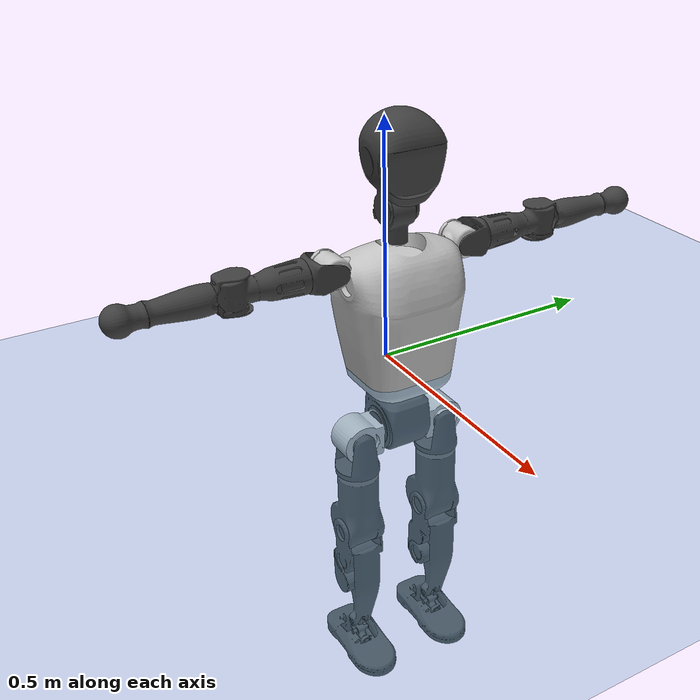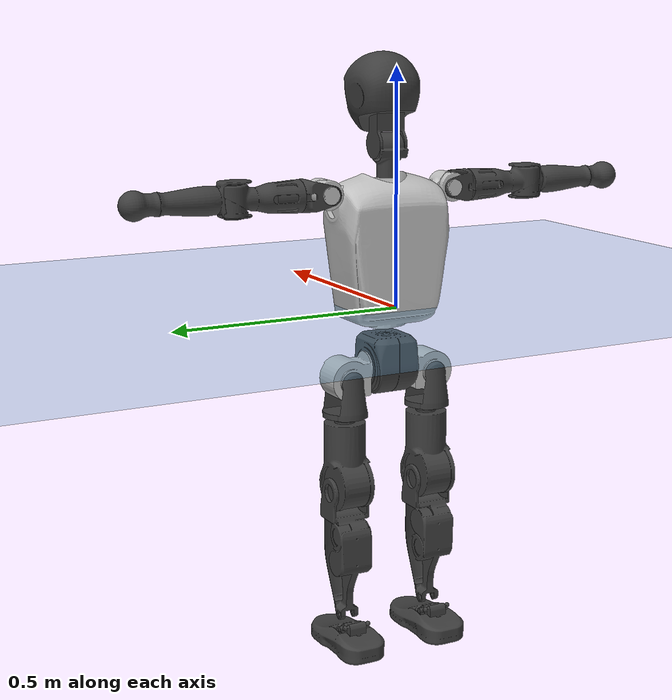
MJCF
<mujoco model="T1">
  <compiler angle="radian" assetdir="assets" balanceinertia="true" inertiafromgeom="false"/>

  <option timestep="0.005" density="1.2" viscosity="2e-05"/>

  <size nkey="1"/>

  <visual>
    <quality shadowsize="8192"/>
    <map shadowclip="0.5"/>
  </visual>

  <default>
    <default class="/">
      <joint armature="0.01" damping="0.01" frictionloss="0.1"/>
      <geom contype="0" conaffinity="0" group="1" solref="-1000 -80"/>
      <site size="0.01 0.005 0.005" group="5"/>
      <general forcelimited="true" biastype="affine" gainprm="25" biasprm="0 -25 -0.6"/>
      <default class="t1">
        <geom rgba="0.25 0.25 0.25 1"/>
        <default class="visual">
          <geom type="mesh" group="2"/>
        </default>
        <default class="collision">
          <geom group="3"/>
        </default>
        <default class="foot">
          <geom size="0.1115 0.05 0.015" type="box" condim="6" group="4" priority="1" solimp="0.015 1 0.015"/>
        </default>
        <default class="reward_collision_sphere">
          <geom group="5" rgba="1 0 0 1"/>
        </default>
      </default>
    </default>
  </default>

  <asset>
    <texture type="skybox" colorspace="auto" name="//unnamed_texture_0" builtin="gradient" rgb1="0.95 0.95 0.95" rgb2="0.95 0.95 0.95" width="100" height="600"/>
    <texture type="2d" colorspace="auto" name="texplane" builtin="checker" rgb1="0.345 0.575 0.748" rgb2="0.345 0.575 0.748" markrgb="1 1 1" width="512" height="512"/>
    <material name="MatPlane" class="/" texture="texplane" texuniform="true" texrepeat="2 2" specular="0.9"/>
    <mesh name="Trunk" class="/" file="Trunk.stl"/>
    <mesh name="H1" class="/" file="H1.stl"/>
    <mesh name="H2" class="/" file="H2.stl"/>
    <mesh name="AL1" class="/" file="AL1.stl"/>
    <mesh name="AL2" class="/" file="AL2.stl"/>
    <mesh name="AL3" class="/" file="AL3.stl"/>
    <mesh name="left_hand_link" class="/" file="left_hand_link.stl"/>
    <mesh name="AR1" class="/" file="AR1.stl"/>
    <mesh name="AR2" class="/" file="AR2.stl"/>
    <mesh name="AR3" class="/" file="AR3.stl"/>
    <mesh name="right_hand_link" class="/" file="right_hand_link.stl"/>
    <mesh name="Waist" class="/" file="Waist.stl"/>
    <mesh name="Hip_Pitch_Left" class="/" file="Hip_Pitch_Left.stl"/>
    <mesh name="Hip_Roll_Left" class="/" file="Hip_Roll_Left.stl"/>
    <mesh name="Hip_Yaw_Left" class="/" file="Hip_Yaw_Left.stl"/>
    <mesh name="Shank_Left" class="/" file="Shank_Left.stl"/>
    <mesh name="Ankle_Cross_Left" class="/" file="Ankle_Cross_Left.stl"/>
    <mesh name="left_foot_link" class="/" file="left_foot_link.stl"/>
    <mesh name="Hip_Pitch_Right" class="/" file="Hip_Pitch_Right.stl"/>
    <mesh name="Hip_Roll_Right" class="/" file="Hip_Roll_Right.stl"/>
    <mesh name="Hip_Yaw_Right" class="/" file="Hip_Yaw_Right.stl"/>
    <mesh name="Shank_Right" class="/" file="Shank_Right.stl"/>
    <mesh name="Ankle_Cross_Right" class="/" file="Ankle_Cross_Right.stl"/>
    <mesh name="right_foot_link" class="/" file="right_foot_link.stl"/>
  </asset>

  <worldbody>
    <geom name="floor" class="/" size="100 100 0.125" type="plane" group="0" material="MatPlane"/>
    <light name="toplight_shadow" class="/" pos="0 0 5" dir="0.0990148 0.0990148 -0.990148" type="directional" ambient="0.04 0.04 0.04" diffuse="0.55 0.55 0.55" specular="0.12 0.12 0.12"/>
    <light name="toplight_fill" class="/" pos="0 0 5" dir="0.0990148 0.0990148 -0.990148" type="directional" castshadow="false" ambient="0.04 0.04 0.04" diffuse="0.3 0.3 0.3" specular="0.08 0.08 0.08"/>
    <body name="trunk" childclass="t1" pos="-0.000213895 -0.000612978 -0.00115484" quat="1 -5.51397e-05 -0.000595138 0.000449182">
      <inertial pos="0.0404258 -0.000607176 0.117775" quat="0.999956 0.000545799 -0.00936597 0.000338935" mass="9.22254" diaginertia="0.0201394 0.0518926 0.0969221"/>
      <joint name="//unnamed_joint_0" type="free" armature="0" damping="0" frictionloss="0"/>
      <geom name="//unnamed_geom_1" class="visual" rgba="0.76 0.76 0.76 1" mesh="Trunk"/>
      <geom name="//unnamed_geom_2" class="collision" size="0.0696503 0.0928671 0.139301" pos="0.0443354 0 0.134145" type="box"/>
      <geom name="//unnamed_geom_3" class="reward_collision_sphere" size="0.106797" pos="0.0443354 0 0.111788"/>
      <geom name="//unnamed_geom_4" class="reward_collision_sphere" size="0.0139301" pos="0.0443354 0.0789832 0"/>
      <geom name="//unnamed_geom_5" class="reward_collision_sphere" size="0.0139301" pos="0.0443354 -0.0789832 0"/>
      <geom name="//unnamed_geom_6" class="reward_collision_sphere" size="0.0139301" pos="0.0443354 0.099426 0.201218"/>
      <geom name="//unnamed_geom_7" class="reward_collision_sphere" size="0.0139301" pos="0.0443354 -0.099426 0.201218"/>
      <site name="imu" pos="-0.00539159 -0.00195169 -9.6059e-05" size="0.00928671"/>
      <camera name="track" pos="0 -1.85843 0" quat="0.707107 0.707107 0 0" mode="trackcom"/>
      <camera name="ego_camera" pos="0.0901486 0 0.469508" quat="-0.5 -0.5 0.5 0.5"/>
      <body name="H1" pos="0.0450628 -0.0001921 0.271222" quat="1 -0.000160537 0.000385948 0.000276878">
        <inertial pos="-0.00107314 -0.0024871 0.0640361" quat="0.76386 -0.013185 0.00182928 0.645244" mass="0.354323" diaginertia="5.28465e-05 0.000156745 0.000264363"/>
        <joint name="AAHead_yaw" pos="0 0 0" axis="-0.000391373 0.00067855 1" stiffness="0.000146181" range="-1.6042 1.57673" armature="0.00940068" damping="0.0147138" frictionloss="0.088942"/>
        <geom name="//unnamed_geom_8" class="visual" mesh="H1"/>
        <body name="H2" pos="0.000385427 -0.000381994 0.0689229" quat="1 -0.000149714 0.000133991 -0.000678402">
          <inertial pos="0.00536129 0.00123564 0.110133" quat="0.988472 0.106223 -0.0743114 -0.0782143" mass="0.49763" diaginertia="0.000451334 0.00133802 0.00301266"/>
          <joint name="Head_pitch" pos="0 0 0" axis="-0.0054772 -0.999985 -0.000663459" range="-1.218 0.373626" armature="0.00954082" damping="0.0128529" frictionloss="0.0990879"/>
          <geom name="//unnamed_geom_9" class="visual" mesh="H2"/>
          <geom name="//unnamed_geom_10" class="collision" size="0.0742937" pos="0.00738923 0 0.122966"/>
          <geom name="//unnamed_geom_11" class="reward_collision_sphere" size="0.0835804" pos="0.0147785 0 0.111788"/>
        </body>
      </body>
      <body name="AL1" pos="0.0448064 0.0990221 0.244546" quat="1 -0.000338427 0.000466897 -0.000173839">
        <inertial pos="-0.00214228 0.0425034 0.000973305" quat="0.503907 0.495245 -0.50459 0.496185" mass="0.42885" diaginertia="0.000302881 0.000923788 0.000513712"/>
        <joint name="Left_Shoulder_Pitch" pos="0 0 0" axis="-0.001474 0.999999 8.58835e-05" range="-3.31403 1.21897" armature="0.00926435" damping="0.00321386" frictionloss="0.097006"/>
        <geom name="//unnamed_geom_12" class="visual" rgba="0.76 0.76 0.76 1" mesh="AL1"/>
        <body name="AL2" pos="0.00152964 0.0434566 -0.00091525" quat="1 2.89863e-05 0.000321581 0.000250769">
          <inertial pos="0.00342668 0.0355496 -0.000913633" quat="0.491364 0.512376 -0.484997 0.510696" mass="0.12799" diaginertia="8.84045e-05 0.000240922 0.000307234"/>
          <joint name="Left_Shoulder_Roll" pos="0 0 0" axis="-0.999978 0.00102693 -0.0065809" range="-1.57359 1.73968" armature="0.00955918" damping="0.00594469" frictionloss="0.0876217"/>
          <geom name="//unnamed_geom_13" class="visual" mesh="AL2"/>
          <body name="AL3" pos="-0.000497239 0.0571942 -6.57665e-05" quat="1 -2.84326e-05 0.000179585 -0.000372037">
            <inertial pos="-0.000574239 0.0792357 0.000383978" quat="0.706454 0.707759 -0.000247802 0.000147596" mass="0.819732" diaginertia="0.00280645 0.00885815 0.00109872"/>
            <joint name="Left_Elbow_Pitch" pos="0 0 0" axis="-0.0014956 -0.999993 0.00343327" range="-2.26604 2.27154" armature="0.00930033" damping="0.0105777" frictionloss="0.0886065"/>
            <geom name="//unnamed_geom_14" class="visual" mesh="AL3"/>
            <geom name="//unnamed_geom_15" class="collision" size="0.0278601 0.0696503" pos="0 0.0464607 0" quat="0.707105 0.707108 0 0" type="cylinder"/>
            <geom name="//unnamed_geom_16" class="reward_collision_sphere" size="0.0334321"/>
            <body name="left_hand_link" pos="0.00100875 0.135755 0.00241075" quat="1 0.000126777 0.000212492 -0.000342439">
              <inertial pos="-0.000179536 0.10099 0.000158017" quat="0.708749 0.705461 -0.000328616 -0.000941936" mass="0.269912" diaginertia="0.00179952 0.00569826 0.000381836"/>
              <joint name="Left_Elbow_Yaw" pos="0 0 0" axis="0.00499581 0.00536741 0.999973" range="-2.45356 -0.00521443" armature="0.00943152" damping="0.0112541" frictionloss="0.0897626"/>
              <geom name="//unnamed_geom_17" class="visual" mesh="left_hand_link"/>
              <geom name="//unnamed_geom_18" class="collision" size="0.0278601 0.0812587" pos="0 0.120798 0" quat="0.707105 0.707108 0 0" type="cylinder"/>
              <geom name="//unnamed_geom_19" class="reward_collision_sphere" size="0.0464335"/>
              <geom name="//unnamed_geom_20" class="reward_collision_sphere" size="0.0325035" pos="0 0.102214 0"/>
              <geom name="//unnamed_geom_21" class="reward_collision_sphere" size="0.0325035" pos="0 0.199781 0"/>
            </body>
          </body>
        </body>
      </body>
      <body name="AR1" pos="0.0420378 -0.0973541 0.245204" quat="1 0.000103639 0.000839108 0.000191114">
        <inertial pos="-0.000665056 -0.04103 -9.54386e-05" quat="0.506852 0.492944 -0.502239 0.497858" mass="0.429907" diaginertia="0.000303114 0.0009062 0.000516294"/>
        <joint name="Right_Shoulder_Pitch" pos="0 0 0" axis="-0.000965842 -0.999998 -0.00164886" range="-1.22566 3.29715" armature="0.00905918" damping="0.00592128" frictionloss="0.0949002"/>
        <geom name="//unnamed_geom_22" class="visual" rgba="0.76 0.76 0.76 1" mesh="AR1"/>
        <body name="AR2" pos="-0.000586327 -0.043894 -0.00134257" quat="1 -6.97233e-05 1.93314e-06 -0.000207953">
          <inertial pos="0.00373673 -0.0354037 3.49605e-05" quat="0.513051 0.487795 -0.511376 0.487165" mass="0.127009" diaginertia="8.98463e-05 0.000237397 0.000305469"/>
          <joint name="Right_Shoulder_Roll" pos="0 0 0" axis="-0.999992 -0.000914605 -0.00393894" range="-1.74521 1.57605" armature="0.00930873" damping="0.00105355" frictionloss="0.0956166"/>
          <geom name="//unnamed_geom_23" class="visual" mesh="AR2"/>
          <body name="AR3" pos="-0.000640046 -0.0560094 0.000421906" quat="1 4.91804e-05 -0.000100477 3.57202e-05">
            <inertial pos="-0.00178026 -0.079675 6.49814e-05" quat="0.708887 0.705322 -0.000706413 -0.000172966" mass="0.835385" diaginertia="0.00288104 0.00891786 0.00108418"/>
            <joint name="Right_Elbow_Pitch" pos="0 0 0" axis="-0.00498808 0.999987 -0.000504985" range="-2.26781 2.28872" armature="0.00927235" damping="0.0106607" frictionloss="0.0910033"/>
            <geom name="//unnamed_geom_24" class="visual" mesh="AR3"/>
            <geom name="//unnamed_geom_25" class="collision" size="0.0278601 0.0696503" pos="0 -0.0464607 0" quat="0.707105 0.707108 0 0" type="cylinder"/>
            <geom name="//unnamed_geom_26" class="reward_collision_sphere" size="0.0334321"/>
            <body name="right_hand_link" pos="-0.000562211 -0.136265 0.000817217" quat="1 -0.000104988 4.51868e-05 -1.62327e-05">
              <inertial pos="0.000261728 -0.101827 0.00126669" quat="0.705599 0.708609 0.00130721 -0.00139044" mass="0.265528" diaginertia="0.00180194 0.00576348 0.000375206"/>
              <joint name="Right_Elbow_Yaw" pos="0 0 0" axis="-0.000354383 0.00269687 0.999996" stiffness="0.00313911" range="-0.00646868 2.4389" armature="0.00944942" damping="0.01052" frictionloss="0.093157"/>
              <geom name="//unnamed_geom_27" class="visual" mesh="right_hand_link"/>
              <geom name="//unnamed_geom_28" class="collision" size="0.0278601 0.0812587" pos="0 -0.120798 0" quat="0.707105 0.707108 0 0" type="cylinder"/>
              <geom name="//unnamed_geom_29" class="reward_collision_sphere" size="0.0464335"/>
              <geom name="//unnamed_geom_30" class="reward_collision_sphere" size="0.0325035" pos="0 -0.102214 0"/>
              <geom name="//unnamed_geom_31" class="reward_collision_sphere" size="0.0325035" pos="0 -0.199781 0"/>
            </body>
          </body>
        </body>
      </body>
      <body name="Waist" pos="0.0460243 -0.000506105 -0.129697" quat="1 -0.00010157 -0.000150007 -6.88691e-05">
        <inertial pos="0.000681705 -0.000979847 0.00728226" quat="0.98357 0.00137491 -0.180514 0.00164174" mass="2.0757" diaginertia="0.00119686 0.00372476 0.00838645"/>
        <joint name="Waist" pos="0 0 0" axis="-0.0005926 -0.0012603 0.999999" stiffness="0.000353617" range="-1.56513 1.55192" armature="0.00921384" damping="0" frictionloss="0.0924916"/>
        <geom name="//unnamed_geom_32" class="visual" mesh="Waist"/>
        <body name="Hip_Pitch_Left" pos="0.000627774 0.0997468 0.000303788" quat="1 -0.000137135 -8.04219e-05 0.000138583">
          <inertial pos="0.00134287 -0.00713651 -0.021902" quat="0.975146 0.22109 0.0143713 0.00182988" mass="0.826337" diaginertia="0.000393901 0.00100865 0.00219718"/>
          <joint name="Left_Hip_Pitch" pos="0 0 0" axis="-0.00595289 0.999982 0.000717708" range="-1.79577 1.56738" armature="0.00927219" damping="0.00884819" frictionloss="0.0910587"/>
          <geom name="//unnamed_geom_33" class="visual" rgba="0.76 0.76 0.76 1" mesh="Hip_Pitch_Left"/>
          <body name="Hip_Roll_Left" pos="-0.000957682 0.00054199 -0.0235055" quat="1 -7.86022e-05 -5.95276e-05 -2.99368e-05">
            <inertial pos="0.00154503 -0.000376844 -0.0602846" quat="0.706732 -0.00173846 -0.00806864 0.707433" mass="0.306327" diaginertia="0.000381133 0.00103681 0.000891976"/>
            <joint name="Left_Hip_Roll" pos="0 0 0" axis="-0.999991 -0.00403062 -0.00108958" range="-1.57507 0.203756" armature="0.00921248" damping="0.00754234" frictionloss="0.0944076"/>
            <geom name="//unnamed_geom_34" class="visual" mesh="Hip_Roll_Left"/>
            <geom name="//unnamed_geom_35" class="reward_collision_sphere" size="0.0510769"/>
            <body name="Hip_Yaw_Left" pos="0.000676803 0.000258321 -0.090816" quat="1 1.22077e-05 -5.4377e-08 2.4762e-05">
              <inertial pos="-0.0049632 -0.000867799 -0.100847" quat="0.69499 -0.0327653 -0.0334888 0.717492" mass="1.74052" diaginertia="0.00577532 0.0173753 0.00452203"/>
              <joint name="Left_Hip_Yaw" pos="0 0 0" axis="-0.000913281 -0.00235322 -0.999997" range="-1.00266 1.0035" armature="0.00937293" damping="0.0124027" frictionloss="0.0897334"/>
              <geom name="//unnamed_geom_36" class="visual" mesh="Hip_Yaw_Left"/>
              <geom name="//unnamed_geom_37" class="collision" size="0.0464335 0.0742937" type="cylinder"/>
              <body name="Shank_Left" pos="-0.00932915 0.000935489 -0.150161" quat="1 0.000303063 -0.000609496 -0.000142555">
                <inertial pos="-0.00544074 -0.00116639 -0.138195" quat="0.99768 0.000557611 -0.0262911 0.0627975" mass="1.37209" diaginertia="0.00757009 0.023609 0.00319766"/>
                <joint name="Left_Knee_Pitch" pos="0 0 0" axis="-0.00129669 0.999999 -0.00034385" range="0.00155959 2.34128" armature="0.00914052" damping="0.0100281" frictionloss="0.0888195"/>
                <geom name="//unnamed_geom_38" class="visual" mesh="Shank_Left"/>
                <geom name="//unnamed_geom_39" class="collision" size="0.0464335 0.0696503" pos="0 0 -0.134145" type="cylinder"/>
                <geom name="//unnamed_geom_40" class="reward_collision_sphere" size="0.0603636"/>
                <body name="Ankle_Cross_Left" pos="-0.00158662 0.000578116 -0.313794" quat="1 3.56134e-05 -3.01866e-05 2.58151e-05">
                  <inertial pos="-0.00220167 -5.11647e-05 -0.00906025" quat="0.44417 0.554986 0.545899 0.443506" mass="0.0576979" diaginertia="6.37082e-06 1.75624e-05 1.97208e-05"/>
                  <joint name="Left_Ankle_Pitch" pos="0 0 0" axis="-0.0026694 0.999992 0.00293802" range="-0.865068 0.336849" armature="0.00943039" damping="0.00537008" frictionloss="0.0934798"/>
                  <geom name="//unnamed_geom_41" class="visual" mesh="Ankle_Cross_Left"/>
                  <body name="left_foot_link" pos="-0.000737577 -0.000222215 -0.0140079" quat="1 -0.000234619 0.000270805 0.000127099">
                    <inertial pos="-0.000166003 5.66952e-05 -0.00854531" quat="0.000260367 0.62079 -0.000406232 0.783977" mass="0.557788" diaginertia="0.000601324 0.00166523 0.00389486"/>
                    <joint name="Left_Ankle_Roll" pos="0 0 0" axis="-0.999998 0.00180215 0.000455423" range="-0.433998 0.420722" armature="0.00923392" damping="0.0159642" frictionloss="0.0928158"/>
                    <geom name="//unnamed_geom_42" class="visual" mesh="left_foot_link"/>
                    <geom name="left_foot" class="foot" size="0.106343 0.0504828 0.0137777" pos="0.00738923 0 -0.0167681"/>
                    <geom name="//unnamed_geom_44" class="reward_collision_sphere" size="0.0482909" pos="0.00738923 0 -0.0167681"/>
                    <geom name="//unnamed_geom_45" class="reward_collision_sphere" size="0.0278601" pos="0.0701977 -0.0213719 -0.0167681"/>
                    <geom name="//unnamed_geom_46" class="reward_collision_sphere" size="0.0278601" pos="-0.0517246 -0.0213719 -0.0167681"/>
                    <site name="left_foot" class="foot" pos="0.00738923 0 -0.0167681" size="0.00928671"/>
                  </body>
                </body>
              </body>
            </body>
          </body>
        </body>
        <body name="Hip_Pitch_Right" pos="-0.000821749 -0.0974313 0.00049004" quat="1 -0.000179125 8.86889e-05 -3.38223e-05">
          <inertial pos="-1.39709e-06 0.0056016 -0.0200963" quat="0.974292 -0.224652 0.0167024 -0.00268526" mass="0.815319" diaginertia="0.000399266 0.00101136 0.00215043"/>
          <joint name="Right_Hip_Pitch" pos="0 0 0" axis="8.74961e-05 -1 -0.000123001" range="-1.58503 1.78686" armature="0.00929074" damping="0.00342764" frictionloss="0.0989504"/>
          <geom name="//unnamed_geom_47" class="visual" rgba="0.76 0.76 0.76 1" mesh="Hip_Pitch_Right"/>
          <body name="Hip_Roll_Right" pos="-0.00133292 -0.000454839 -0.0222333" quat="1 -5.36689e-06 -6.66604e-06 1.02797e-05">
            <inertial pos="0.00140924 -0.000254031 -0.0609773" quat="0.707206 -0.00608782 -0.00638513 0.706952" mass="0.308116" diaginertia="0.000375588 0.00104082 0.000891745"/>
            <joint name="Right_Hip_Roll" pos="0 0 0" axis="-1 -0.000666565 0.000350395" range="-0.213048 1.58654" armature="0.00943254" damping="0.013059" frictionloss="0.0940215"/>
            <geom name="//unnamed_geom_48" class="visual" mesh="Hip_Roll_Right"/>
            <geom name="//unnamed_geom_49" class="reward_collision_sphere" size="0.0510769"/>
            <body name="Hip_Yaw_Right" pos="0.000494164 0.000329611 -0.0914399" quat="1 -7.66973e-05 -8.49296e-05 3.07964e-05">
              <inertial pos="-0.00527261 0.00118546 -0.0995113" quat="0.71533 -0.0323749 -0.0337665 0.69722" mass="1.71988" diaginertia="0.0056175 0.0170844 0.00448688"/>
              <joint name="Right_Hip_Yaw" pos="0 0 0" axis="0.00134745 0.00119993 -0.999998" stiffness="0.0015976" range="-0.997755 1.00489" armature="0.00925802" damping="0.00937375" frictionloss="0.09275"/>
              <geom name="//unnamed_geom_50" class="visual" mesh="Hip_Yaw_Right"/>
              <geom name="//unnamed_geom_51" class="collision" size="0.0464335 0.0742937" type="cylinder"/>
              <body name="Shank_Right" pos="-0.00972152 -0.000781353 -0.148766" quat="1 7.09353e-06 -1.77708e-06 1.82901e-05">
                <inertial pos="-0.00645163 -0.00095302 -0.136656" quat="0.999051 -0.00171162 -0.0226847 -0.0371422" mass="1.40182" diaginertia="0.00760056 0.0237671 0.00337104"/>
                <joint name="Right_Knee_Pitch" pos="0 0 0" axis="-0.0062088 -0.999972 0.00410218" range="-2.33753 -0.0195711" armature="0.00930006" damping="0.00609649" frictionloss="0.094818"/>
                <geom name="//unnamed_geom_52" class="visual" mesh="Shank_Right"/>
                <geom name="//unnamed_geom_53" class="collision" size="0.0464335 0.0696503" pos="0 0 -0.134145" type="cylinder"/>
                <geom name="//unnamed_geom_54" class="reward_collision_sphere" size="0.0603636"/>
                <body name="Ankle_Cross_Right" pos="0.00140151 0.000509966 -0.313706" quat="1 4.0004e-05 5.05145e-05 -0.000411778">
                  <inertial pos="-0.00250321 0.0011869 -0.00914976" quat="0.446935 0.550847 0.549083 0.441956" mass="0.0592885" diaginertia="6.42294e-06 1.7722e-05 1.98634e-05"/>
                  <joint name="Right_Ankle_Pitch" pos="0 0 0" axis="0.000765025 -0.999999 -0.000732954" range="-0.315397 0.85493" armature="0.00906856" damping="0.00498674" frictionloss="0.0937358"/>
                  <geom name="//unnamed_geom_55" class="visual" mesh="Ankle_Cross_Right"/>
                  <body name="right_foot_link" pos="0.000893361 -0.000787328 -0.0138643" quat="1 -2.71785e-05 -2.84468e-05 -0.000171952">
                    <inertial pos="2.82885e-05 0.000810555 -0.00872387" quat="-0.000395079 0.618842 0.000409102 0.785516" mass="0.545235" diaginertia="0.000593975 0.00166395 0.00382982"/>
                    <joint name="Right_Ankle_Roll" pos="0 0 0" axis="-0.999999 -5.35291e-05 -0.00143023" range="-0.434685 0.432961" armature="0.00957624" damping="0.0133865" frictionloss="0.100926"/>
                    <geom name="//unnamed_geom_56" class="visual" mesh="right_foot_link"/>
                    <geom name="right_foot" class="foot" size="0.101485 0.0424642 0.014983" pos="0.00738923 0 -0.0167681"/>
                    <geom name="//unnamed_geom_58" class="reward_collision_sphere" size="0.0371468"/>
                    <geom name="//unnamed_geom_59" class="reward_collision_sphere" size="0.0278601" pos="0.00738923 0 -0.0167681"/>
                    <geom name="//unnamed_geom_60" class="reward_collision_sphere" size="0.0278601" pos="0.0701977 0.0213719 -0.0167681"/>
                    <geom name="//unnamed_geom_61" class="reward_collision_sphere" size="0.0278601" pos="-0.0517246 0.0213719 -0.0167681"/>
                    <site name="right_foot" class="foot" pos="0.00738923 0 -0.0167681" size="0.00928671"/>
                  </body>
                </body>
              </body>
            </body>
          </body>
        </body>
      </body>
    </body>
  </worldbody>

  <contact>
    <pair class="/" geom1="floor" geom2="left_foot" name="//unnamed_contact_0"/>
    <pair class="/" geom1="floor" geom2="right_foot" name="//unnamed_contact_1"/>
  </contact>

  <actuator>
    <general name="AAHead_yaw" class="/" joint="AAHead_yaw" forcerange="-6.51613 6.51613" gainprm="23.1103" biasprm="0 -23.1103 -0.54717"/>
    <general name="Head_pitch" class="/" joint="Head_pitch" forcerange="-6.26656 6.26656" gainprm="23.1103" biasprm="0 -23.1103 -0.54717"/>
    <general name="Left_Shoulder_Pitch" class="/" joint="Left_Shoulder_Pitch" forcerange="-17.2172 17.2172" gainprm="23.1103" biasprm="0 -23.1103 -0.54717"/>
    <general name="Left_Shoulder_Roll" class="/" joint="Left_Shoulder_Roll" forcerange="-16.5594 16.5594" gainprm="23.1103" biasprm="0 -23.1103 -0.54717"/>
    <general name="Left_Elbow_Pitch" class="/" joint="Left_Elbow_Pitch" forcerange="-16.4768 16.4768" gainprm="23.1103" biasprm="0 -23.1103 -0.54717"/>
    <general name="Left_Elbow_Yaw" class="/" joint="Left_Elbow_Yaw" forcerange="-16.8698 16.8698" gainprm="23.1103" biasprm="0 -23.1103 -0.54717"/>
    <general name="Right_Shoulder_Pitch" class="/" joint="Right_Shoulder_Pitch" forcerange="-16.9326 16.9326" gainprm="23.1103" biasprm="0 -23.1103 -0.54717"/>
    <general name="Right_Shoulder_Roll" class="/" joint="Right_Shoulder_Roll" forcerange="-16.2476 16.2476" gainprm="23.1103" biasprm="0 -23.1103 -0.54717"/>
    <general name="Right_Elbow_Pitch" class="/" joint="Right_Elbow_Pitch" forcerange="-16.7917 16.7917" gainprm="23.1103" biasprm="0 -23.1103 -0.54717"/>
    <general name="Right_Elbow_Yaw" class="/" joint="Right_Elbow_Yaw" forcerange="-16.5758 16.5758" gainprm="23.1103" biasprm="0 -23.1103 -0.54717"/>
    <general name="Waist" class="/" joint="Waist" forcerange="-28.1701 28.1701" gainprm="23.1103" biasprm="0 -23.1103 -0.54717"/>
    <general name="Left_Hip_Pitch" class="/" joint="Left_Hip_Pitch" forcerange="-41.6001 41.6001" gainprm="23.1103" biasprm="0 -23.1103 -0.54717"/>
    <general name="Left_Hip_Roll" class="/" joint="Left_Hip_Roll" forcerange="-29.2334 29.2334" gainprm="23.1103" biasprm="0 -23.1103 -0.54717"/>
    <general name="Left_Hip_Yaw" class="/" joint="Left_Hip_Yaw" forcerange="-28.6089 28.6089" gainprm="23.1103" biasprm="0 -23.1103 -0.54717"/>
    <general name="Left_Knee_Pitch" class="/" joint="Left_Knee_Pitch" forcerange="-57.6181 57.6181" gainprm="23.1103" biasprm="0 -23.1103 -0.54717"/>
    <general name="Left_Ankle_Pitch" class="/" joint="Left_Ankle_Pitch" forcerange="-19.1104 19.1104" gainprm="23.1103" biasprm="0 -23.1103 -0.54717"/>
    <general name="Left_Ankle_Roll" class="/" joint="Left_Ankle_Roll" forcerange="-14.4005 14.4005" gainprm="23.1103" biasprm="0 -23.1103 -0.54717"/>
    <general name="Right_Hip_Pitch" class="/" joint="Right_Hip_Pitch" forcerange="-40.8152 40.8152" gainprm="23.1103" biasprm="0 -23.1103 -0.54717"/>
    <general name="Right_Hip_Roll" class="/" joint="Right_Hip_Roll" forcerange="-27.3502 27.3502" gainprm="23.1103" biasprm="0 -23.1103 -0.54717"/>
    <general name="Right_Hip_Yaw" class="/" joint="Right_Hip_Yaw" forcerange="-27.2482 27.2482" gainprm="23.1103" biasprm="0 -23.1103 -0.54717"/>
    <general name="Right_Knee_Pitch" class="/" joint="Right_Knee_Pitch" forcerange="-56.3694 56.3694" gainprm="23.1103" biasprm="0 -23.1103 -0.54717"/>
    <general name="Right_Ankle_Pitch" class="/" joint="Right_Ankle_Pitch" forcerange="-18.6871 18.6871" gainprm="23.1103" biasprm="0 -23.1103 -0.54717"/>
    <general name="Right_Ankle_Roll" class="/" joint="Right_Ankle_Roll" forcerange="-13.9049 13.9049" gainprm="23.1103" biasprm="0 -23.1103 -0.54717"/>
  </actuator>

  <sensor>
    <gyro site="imu" name="imu_angular_velocity"/>
    <velocimeter site="imu" name="imu_linear_velocity"/>
    <framelinvel objtype="site" objname="left_foot" name="left_foot_global_linear_velocity"/>
    <framelinvel objtype="site" objname="right_foot" name="right_foot_global_linear_velocity"/>
  </sensor>

  <keyframe>
    <key name="home" qpos="0 0 0.6385 1 0 0 0 0 0 0 1.4 0 -0.4 0 -1.4 0 0.4 0 -0.4 0 0 0.8 -0.4 0 0.4 0 0 -0.8 0.4 0"/>
  </keyframe>
</mujoco>
